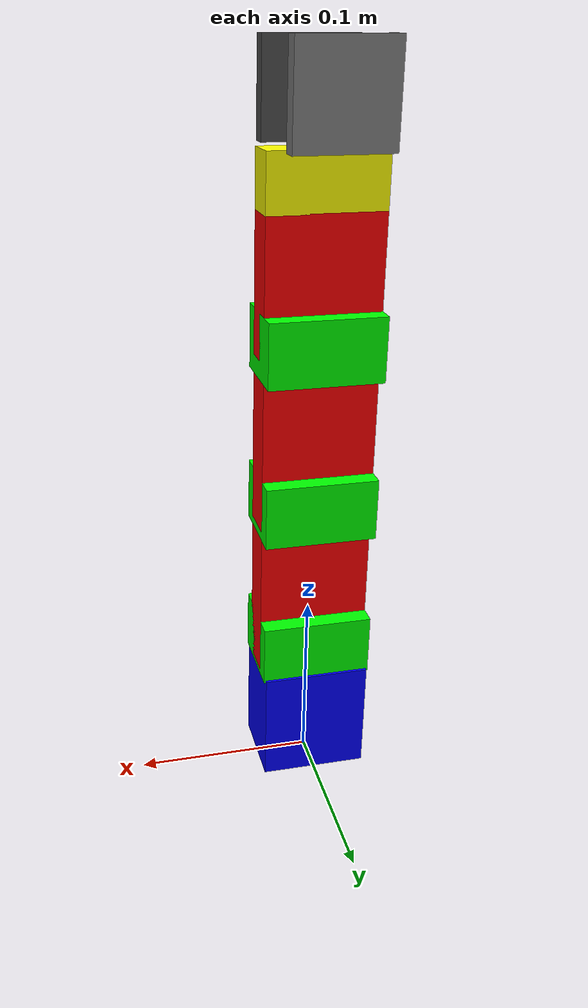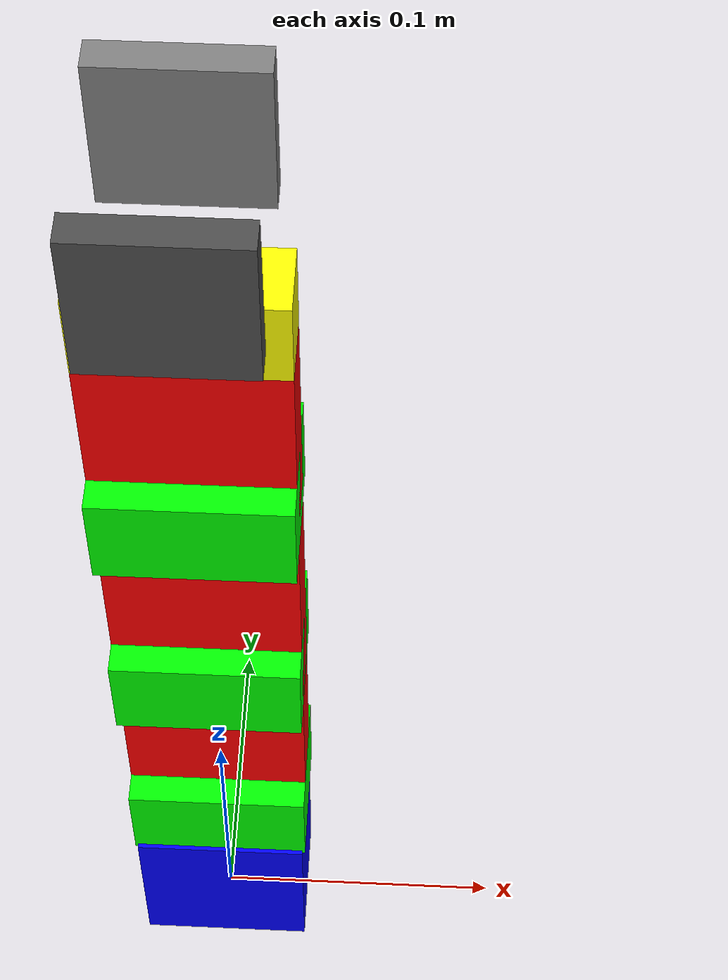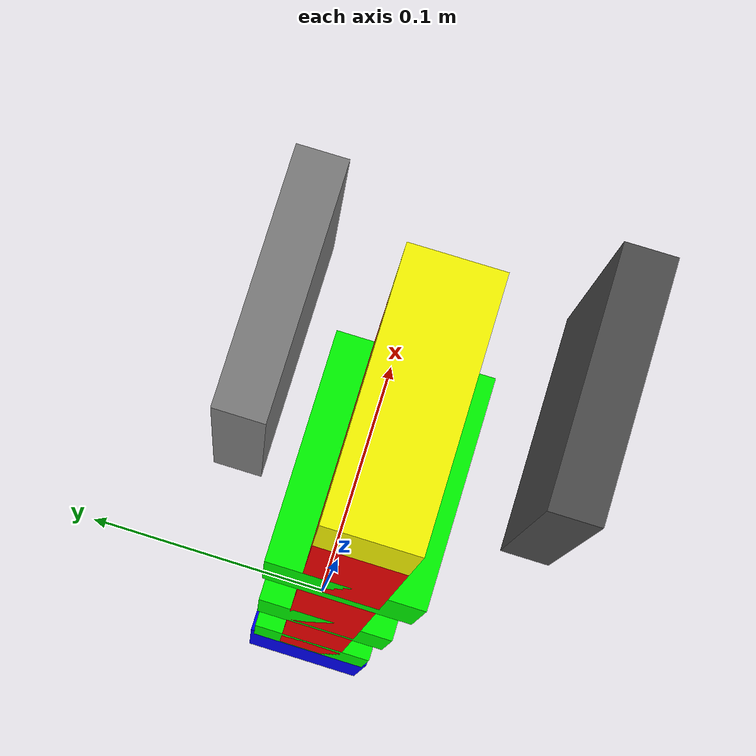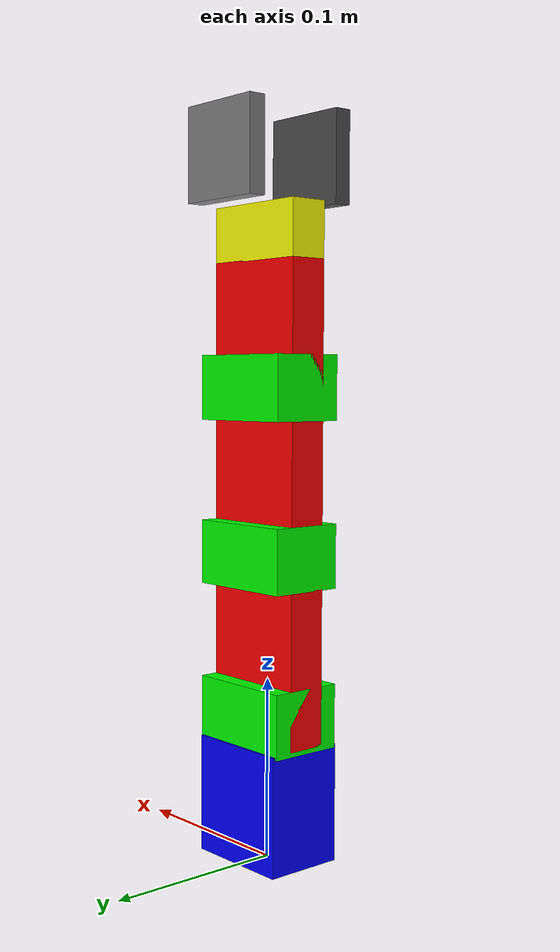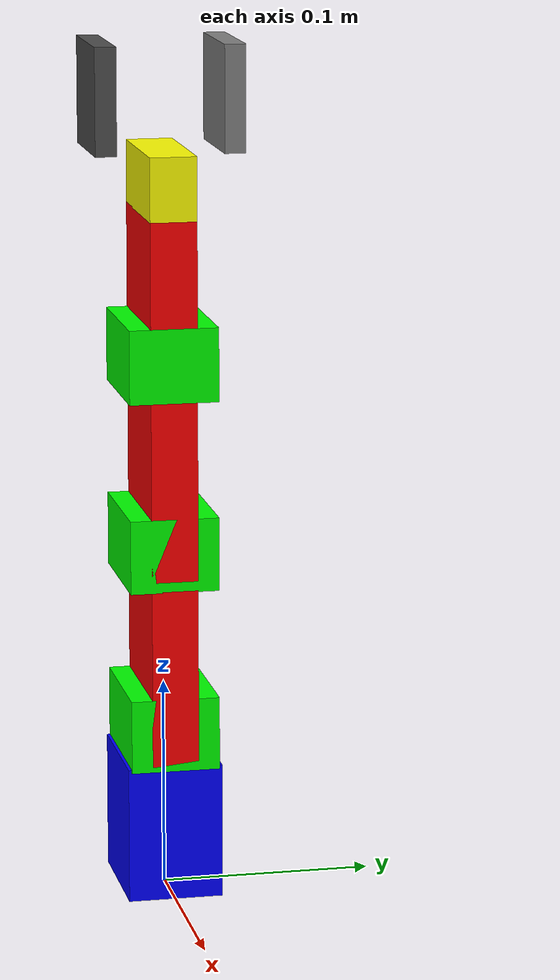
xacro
<?xml version="1.0"?>
<robot xmlns:xacro="http://www.ros.org/wiki/xacro" name="robotic_arm">
    <xacro:arg name="initial_positions_file" default="initial_positions.yaml" />

    <!-- Import robotic_arm urdf file -->
    <xacro:include filename="/shared_with_docker/moveit_arm07/robotic_arm7.urdf" />

    <!-- Import control_xacro -->
    <xacro:include filename="robotic_arm.ros2_control.xacro" />

    <xacro:robotic_arm_ros2_control name="FakeSystem" initial_positions_file="$(arg initial_positions_file)"/>

</robot>

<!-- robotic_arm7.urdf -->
<robot name="robotic_arm">
    <!-- Base Link -->
    <link name="base_link">
        <visual>
            <origin xyz="0 0 0.0335"/>  <!-- Half of the height to center the visual -->
            <geometry>
                <box size="0.06 0.045 0.065"/>
            </geometry>
            <material name="blue">
                <color rgba="0 0 1 1"/>  <!-- Blue -->
            </material>
        </visual>
        <collision>
            <origin xyz="0 0 0.0335"/>
            <geometry>
                <box size="0.06 0.045 0.065"/>
            </geometry>
        </collision>
    </link>

    <!-- Link 1 -->
    <link name="link1">
        <visual>
            <origin xyz="0 0 0.015"/>  <!-- Half of the height to center the visual -->
            <geometry>
                <box size="0.062 0.042 0.035"/>
            </geometry>
            <material name="green">
                <color rgba="0 1 0 1"/>  <!-- Green -->
            </material>
        </visual>
        <collision>
            <origin xyz="0 0 0.015"/>
            <geometry>
                <box size="0.062 0.042 0.035"/>
            </geometry>
        </collision>
    </link>

    <!-- Link 2 -->
    <link name="link2">
        <visual>
            <origin xyz="0 0 0.0125"/>  <!-- Half of the height to center the visual -->
            <geometry>
                <box size="0.062 0.022 0.085"/>
            </geometry>
            <material name="red">
                <color rgba="1 0 0 1"/>  <!-- Red -->
            </material>
        </visual>
        <collision>
            <origin xyz="0 0 0.0125"/>
            <geometry>
                <box size="0.062 0.022 0.085"/>
            </geometry>
        </collision>
    </link>

    <!-- Link 3 -->
    <link name="link3">
        <visual>
            <origin xyz="0 0 0.01"/>  <!-- Half of the height to center the visual -->
            <geometry>
                <box size="0.062 0.042 0.035"/>
            </geometry>
            <material name="green">
                <color rgba="0 1 0 1"/>  <!-- Green -->
            </material>
        </visual>
        <collision>
            <origin xyz="0 0 0.01"/>
            <geometry>
                <box size="0.062 0.042 0.035"/>
            </geometry>
        </collision>
    </link>

    <!-- Link 4 -->
    <link name="link4">
        <visual>
            <origin xyz="0 0 0.01"/>  <!-- Half of the height to center the visual -->
            <geometry>
                <box size="0.062 0.022 0.085"/>
            </geometry>
            <material name="red">
                <color rgba="1 0 0 1"/>  <!-- Red -->
            </material>
        </visual>
        <collision>
            <origin xyz="0 0 0.01"/>
            <geometry>
                <box size="0.062 0.022 0.085"/>
            </geometry>
        </collision>
    </link>

    <!-- Link 5 -->
    <link name="link5">
        <visual>
            <origin xyz="0 0 -0.02"/>  <!-- Half of the height to center the visual -->
            <geometry>
                <box size="0.062 0.042 0.035"/>
            </geometry>
            <material name="green">
                <color rgba="0 1 0 1"/>  <!-- Green -->
            </material>
        </visual>
        <collision>
            <origin xyz="0 0 -0.02"/>
            <geometry>
                <box size="0.062 0.042 0.035"/>
            </geometry>
        </collision>
    </link>

    <!-- Link 6 -->
    <link name="link6">
        <visual>
            <origin xyz="0 0 0.01"/>  <!-- Half of the height to center the visual -->
            <geometry>
                <box size="0.062 0.022 0.075"/>
            </geometry>
            <material name="red">
                <color rgba="1 0 0 1"/>  <!-- Red -->
            </material>
        </visual>
        <collision>
            <origin xyz="0 0 0.01"/>
            <geometry>
                <box size="0.062 0.022 0.075"/>
            </geometry>
        </collision>
    </link>

    <!-- Link Grabber -->
    <link name="link_grabber">
        <visual>
            <origin xyz="0 0 0"/>  <!-- Half of the height to center the visual -->
            <geometry>
                <box size="0.062 0.022 0.03"/>
            </geometry>
            <material name="yellow">
                <color rgba="1 1 0 1"/>  <!-- Yellow -->
            </material>
        </visual>
        <collision>
            <origin xyz="0 0 0"/>
            <geometry>
                <box size="0.062 0.022 0.03"/>
            </geometry>
        </collision>
    </link>

    <!-- Fixed Part of the Clamp -->
    <link name="clamp_fixed">
        <visual>
            <origin xyz="0 0 0" rpy="0 0 0"/>  <!-- Rotated 45 degrees around X-axis -->
            <geometry>
                <box size="0.05 0.01 0.05"/>
            </geometry>
            <material name="gray">
                <color rgba="0.5 0.5 0.5 1"/>  <!-- Gray -->
            </material>
        </visual>
        <collision>
            <origin xyz="0 0 0" rpy="0 0 0"/>  <!-- Rotated 45 degrees around X-axis -->
            <geometry>
                <box size="0.05 0.01 0.05"/>
            </geometry>
        </collision>
    </link>

    <!-- Moving Part of the Clamp -->
    <link name="clamp_moving">
        <visual>
            <origin xyz="0 0 0"/>  <!-- Half of the height to center the visual -->
            <geometry>
                <box size="0.05 0.01 0.05"/>
            </geometry>
            <material name="dark_gray">
                <color rgba="0.3 0.3 0.3 1"/>  <!-- Dark Gray -->
            </material>
        </visual>
        <collision>
            <origin xyz="0 0 0"/>
            <geometry>
                <box size="0.05 0.01 0.05"/>
            </geometry>
        </collision>
    </link>

    <!-- Joint Definitions -->
    <joint name="rotating_base" type="revolute">
        <parent link="base_link"/>
        <child link="link1"/>
        <origin xyz="0 0 0.067" rpy="0 0 0"/>  <!-- Moved to top of base_link -->
        <axis xyz="0 0 1"/>
        <limit effort="1.0" lower="-1.5708" upper="1.5708" velocity="1.0"/>
    </joint>

    <joint name="joint1" type="revolute">
        <parent link="link1"/>
        <child link="link2"/>
        <origin xyz="0 0 0.03" rpy="0 0 0"/>  <!-- Moved to top of link1 -->
        <axis xyz="1 0 0"/>
        <limit effort="1.0" lower="-1.5708" upper="1.5708" velocity="1.0"/>
    </joint>

    <joint name="joint2" type="revolute">
        <parent link="link2"/>
        <child link="link3"/>
        <origin xyz="0 0 0.062" rpy="0 0 0"/>
        <axis xyz="0 0 1"/>
        <limit effort="1.0" lower="-1.5708" upper="1.5708" velocity="1.0"/>
    </joint>

    <joint name="joint3" type="revolute">
        <parent link="link3"/>
        <child link="link4"/>
        <origin xyz="0 0 0.03" rpy="0 0 0"/>
        <axis xyz="1 0 0"/>
        <limit effort="1.0" lower="-2.35619" upper="2.35619" velocity="1.0"/>
    </joint>

    <joint name="joint4" type="revolute">
        <parent link="link4"/>
        <child link="link5"/>
        <origin xyz="0 0 0.09" rpy="0 0 0"/>
        <axis xyz="0 0 1"/>
        <limit effort="1.0" lower="-1.5708" upper="1.5708" velocity="1.0"/>
    </joint>

    <joint name="joint5" type="revolute">
        <parent link="link5"/>
        <child link="link6"/>
        <origin xyz="0 0 0" rpy="0 0 0"/>
        <axis xyz="1 0 0"/>
        <limit effort="1.0" lower="-1.5708" upper="1.5708" velocity="1.0"/>
    </joint>

    <joint name="joint6" type="revolute">
        <parent link="link6"/>
        <child link="link_grabber"/>
        <origin xyz="0 0 0.062" rpy="0 0 0"/>
        <axis xyz="0 0 1"/>
        <limit effort="1.0" lower="-1.5708" upper="1.5708" velocity="1.0"/>
    </joint>

    <!-- Fixed Clamp Joint -->
    <joint name="clamp_fixed_joint" type="fixed">
        <parent link="link_grabber"/>
        <child link="clamp_fixed"/>
        <origin xyz="0 0.03 0.04" rpy="0 0 0"/>  <!-- Rotated 45 degrees around X-axis -->
    </joint>

    <!-- Moving Clamp Joint -->
    <joint name="clamp_moving_joint" type="revolute">
        <parent link="link_grabber"/>
        <child link="clamp_moving"/>
        <origin xyz="0 -0.03 0.04" rpy="0 0 0"/>  <!-- Positioned at the end of link_grabber -->
        <axis xyz="1 0 0"/>  <!-- Rotates around the X-axis -->
        <limit effort="1.0" lower="-0.7854" upper="0.7854" velocity="1.0"/>  <!-- -45 to +45 degrees -->
    </joint>
</robot>
